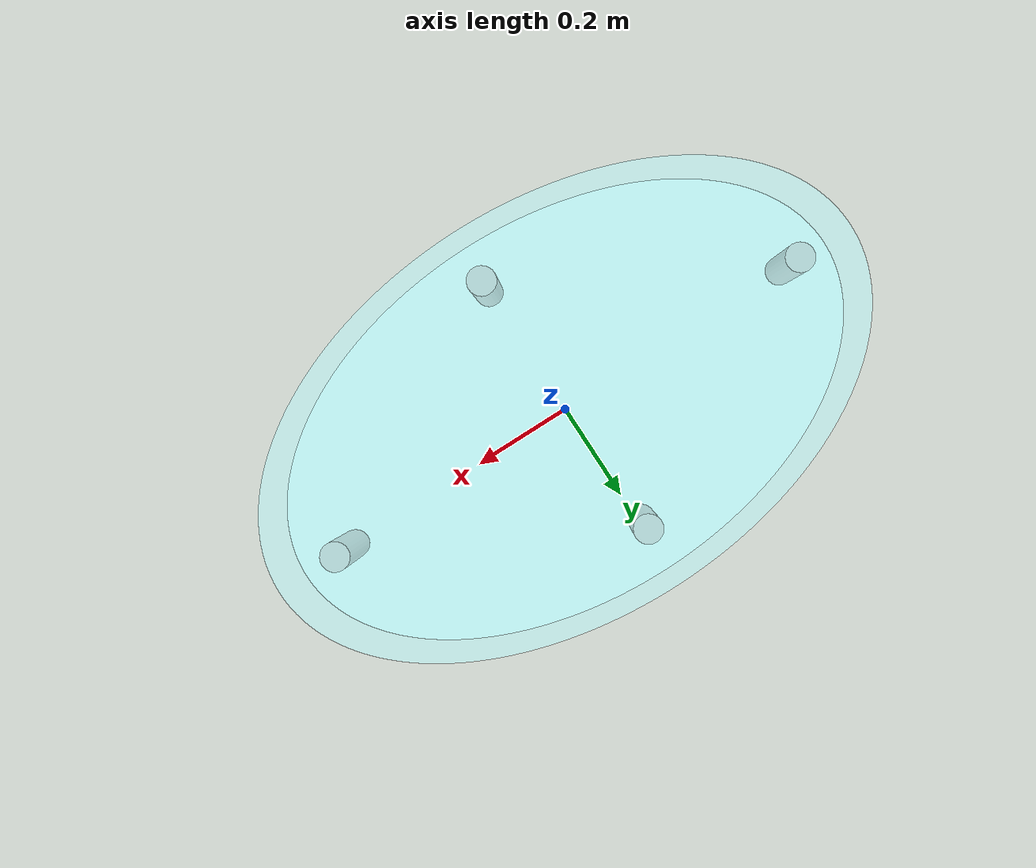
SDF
<?xml version='1.0'?>
<sdf version='1.7'>
  <model name='my_coffee_table'>
    <link name='link_0'>
      <inertial>
        <mass>1</mass>
        <inertia>
          <ixx>0.166667</ixx>
          <ixy>0</ixy>
          <ixz>0</ixz>
          <iyy>0.166667</iyy>
          <iyz>0</iyz>
          <izz>0.166667</izz>
        </inertia>
        <pose>0 0 0 0 -0 0</pose>
      </inertial>
      <pose>0 0 0.015663 0 -0 0</pose>
      <gravity>1</gravity>
      <self_collide>0</self_collide>
      <kinematic>0</kinematic>
      <enable_wind>0</enable_wind>
      <visual name='visual'>
        <pose>0 0 0.35 0 -0 0</pose>
        <geometry>
          <mesh>
            <uri>../../meshes/my_coffee_table.dae</uri>
            <scale>0.6 0.6 0.15</scale>
          </mesh>
        </geometry>
        <material>
          <lighting>1</lighting>
          <script>
            <uri>file://media/materials/scripts/gazebo.material</uri>
            <name>Gazebo/Grey</name>
          </script>
          <shader type='pixel'>
            <normal_map>__default__</normal_map>
          </shader>
          <ambient>0.79 1 1 0.4</ambient>
          <diffuse>0.79 1 1 1</diffuse>
          <specular>0.01 0.01 0.01 1</specular>
          <emissive>0 0 0 1</emissive>
        </material>
        <transparency>0.3</transparency>
        <cast_shadows>1</cast_shadows>
      </visual>
      <collision name='collision'>
        <laser_retro>0</laser_retro>
        <max_contacts>10</max_contacts>
        <pose>0 0 0.35 0 -0 0</pose>
        <geometry>
          <mesh>
            <uri>../../meshes/my_coffee_table.dae</uri>
            <scale>0.6 0.6 0.15</scale>
          </mesh>
        </geometry>
        <surface>
          <friction>
            <ode>
              <mu>1</mu>
              <mu2>1</mu2>
              <fdir1>0 0 0</fdir1>
              <slip1>0</slip1>
              <slip2>0</slip2>
            </ode>
            <torsional>
              <coefficient>1</coefficient>
              <patch_radius>0</patch_radius>
              <surface_radius>0</surface_radius>
              <use_patch_radius>1</use_patch_radius>
              <ode>
                <slip>0</slip>
              </ode>
            </torsional>
          </friction>
          <bounce>
            <restitution_coefficient>0</restitution_coefficient>
            <threshold>1e+06</threshold>
          </bounce>
          <contact>
            <collide_without_contact>0</collide_without_contact>
            <collide_without_contact_bitmask>1</collide_without_contact_bitmask>
            <collide_bitmask>1</collide_bitmask>
            <ode>
              <soft_cfm>0</soft_cfm>
              <soft_erp>0.2</soft_erp>
              <kp>1e+13</kp>
              <kd>1</kd>
              <max_vel>0.01</max_vel>
              <min_depth>0</min_depth>
            </ode>
            <bullet>
              <split_impulse>1</split_impulse>
              <split_impulse_penetration_threshold>-0.01</split_impulse_penetration_threshold>
              <soft_cfm>0</soft_cfm>
              <soft_erp>0.2</soft_erp>
              <kp>1e+13</kp>
              <kd>1</kd>
            </bullet>
          </contact>
        </surface>
      </collision>
    </link>
    <link name='link_0_clone'>
      <inertial>
        <mass>1</mass>
        <inertia>
          <ixx>0.166667</ixx>
          <ixy>0</ixy>
          <ixz>0</ixz>
          <iyy>0.166667</iyy>
          <iyz>0</iyz>
          <izz>0.166667</izz>
        </inertia>
        <pose>0 0 0 0 -0 0</pose>
      </inertial>
      <pose>0 0 -0.15873 0 -0 0</pose>
      <gravity>1</gravity>
      <self_collide>0</self_collide>
      <kinematic>0</kinematic>
      <enable_wind>0</enable_wind>
      <visual name='visual'>
        <pose>0 0 0.35 0 -0 0</pose>
        <geometry>
          <mesh>
            <uri>../../meshes/my_coffee_table.dae</uri>
            <scale>0.6 0.6 0.15</scale>
          </mesh>
        </geometry>
        <material>
          <lighting>1</lighting>
          <script>
            <uri>file://media/materials/scripts/gazebo.material</uri>
            <name>Gazebo/Grey</name>
          </script>
          <shader type='pixel'>
            <normal_map>__default__</normal_map>
          </shader>
          <ambient>0.79 1 1 0.4</ambient>
          <diffuse>0.79 1 1 1</diffuse>
          <specular>0.01 0.01 0.01 1</specular>
          <emissive>0 0 0 1</emissive>
        </material>
        <transparency>0.02</transparency>
        <cast_shadows>1</cast_shadows>
      </visual>
      <collision name='collision'>
        <laser_retro>0</laser_retro>
        <max_contacts>10</max_contacts>
        <pose>0 0 0.35 0 -0 0</pose>
        <geometry>
          <mesh>
            <uri>../../meshes/my_coffee_table.dae</uri>
            <scale>0.6 0.6 0.15</scale>
          </mesh>
        </geometry>
        <surface>
          <friction>
            <ode>
              <mu>1</mu>
              <mu2>1</mu2>
              <fdir1>0 0 0</fdir1>
              <slip1>0</slip1>
              <slip2>0</slip2>
            </ode>
            <torsional>
              <coefficient>1</coefficient>
              <patch_radius>0</patch_radius>
              <surface_radius>0</surface_radius>
              <use_patch_radius>1</use_patch_radius>
              <ode>
                <slip>0</slip>
              </ode>
            </torsional>
          </friction>
          <bounce>
            <restitution_coefficient>0</restitution_coefficient>
            <threshold>1e+06</threshold>
          </bounce>
          <contact>
            <collide_without_contact>0</collide_without_contact>
            <collide_without_contact_bitmask>1</collide_without_contact_bitmask>
            <collide_bitmask>1</collide_bitmask>
            <ode>
              <soft_cfm>0</soft_cfm>
              <soft_erp>0.2</soft_erp>
              <kp>1e+13</kp>
              <kd>1</kd>
              <max_vel>0.01</max_vel>
              <min_depth>0</min_depth>
            </ode>
            <bullet>
              <split_impulse>1</split_impulse>
              <split_impulse_penetration_threshold>-0.01</split_impulse_penetration_threshold>
              <soft_cfm>0</soft_cfm>
              <soft_erp>0.2</soft_erp>
              <kp>1e+13</kp>
              <kd>1</kd>
            </bullet>
          </contact>
        </surface>
      </collision>
    </link>
    <link name='link_1'>
      <inertial>
        <mass>1</mass>
        <inertia>
          <ixx>0.145833</ixx>
          <ixy>0</ixy>
          <ixz>0</ixz>
          <iyy>0.145833</iyy>
          <iyz>0</iyz>
          <izz>0.125</izz>
        </inertia>
        <pose>0 0 0 0 -0 0</pose>
      </inertial>
      <pose>-0.007961 0.235246 0.19 0 -0 0</pose>
      <gravity>1</gravity>
      <self_collide>0</self_collide>
      <kinematic>0</kinematic>
      <enable_wind>0</enable_wind>
      <visual name='visual'>
        <pose>0 0 0 0 -0 0</pose>
        <geometry>
          <cylinder>
            <radius>0.025</radius>
            <length>0.35</length>
          </cylinder>
        </geometry>
        <material>
          <lighting>1</lighting>
          <script>
            <uri>file://media/materials/scripts/gazebo.material</uri>
            <name>Gazebo/Grey</name>
          </script>
          <shader type='pixel'>
            <normal_map>__default__</normal_map>
          </shader>
          <ambient>0.753 0.753 0.753 1</ambient>
          <diffuse>0.753 0.753 0.753 1</diffuse>
          <specular>0.01 0.01 0.01 1</specular>
          <emissive>0 0 0 1</emissive>
        </material>
        <transparency>0</transparency>
        <cast_shadows>1</cast_shadows>
      </visual>
      <collision name='collision'>
        <laser_retro>0</laser_retro>
        <max_contacts>10</max_contacts>
        <pose>0 0 0 0 -0 0</pose>
        <geometry>
          <cylinder>
            <radius>0.025</radius>
            <length>0.35</length>
          </cylinder>
        </geometry>
        <surface>
          <friction>
            <ode>
              <mu>1</mu>
              <mu2>1</mu2>
              <fdir1>0 0 0</fdir1>
              <slip1>0</slip1>
              <slip2>0</slip2>
            </ode>
            <torsional>
              <coefficient>1</coefficient>
              <patch_radius>0</patch_radius>
              <surface_radius>0</surface_radius>
              <use_patch_radius>1</use_patch_radius>
              <ode>
                <slip>0</slip>
              </ode>
            </torsional>
          </friction>
          <bounce>
            <restitution_coefficient>0</restitution_coefficient>
            <threshold>1e+06</threshold>
          </bounce>
          <contact>
            <collide_without_contact>0</collide_without_contact>
            <collide_without_contact_bitmask>1</collide_without_contact_bitmask>
            <collide_bitmask>1</collide_bitmask>
            <ode>
              <soft_cfm>0</soft_cfm>
              <soft_erp>0.2</soft_erp>
              <kp>1e+13</kp>
              <kd>1</kd>
              <max_vel>0.01</max_vel>
              <min_depth>0</min_depth>
            </ode>
            <bullet>
              <split_impulse>1</split_impulse>
              <split_impulse_penetration_threshold>-0.01</split_impulse_penetration_threshold>
              <soft_cfm>0</soft_cfm>
              <soft_erp>0.2</soft_erp>
              <kp>1e+13</kp>
              <kd>1</kd>
            </bullet>
          </contact>
        </surface>
      </collision>
    </link>
    <link name='link_1_clone'>
      <inertial>
        <mass>1</mass>
        <inertia>
          <ixx>0.145833</ixx>
          <ixy>0</ixy>
          <ixz>0</ixz>
          <iyy>0.145833</iyy>
          <iyz>0</iyz>
          <izz>0.125</izz>
        </inertia>
        <pose>0 0 0 0 -0 0</pose>
      </inertial>
      <pose>0.441227 -0.001248 0.19 0 -0 0</pose>
      <gravity>1</gravity>
      <self_collide>0</self_collide>
      <kinematic>0</kinematic>
      <enable_wind>0</enable_wind>
      <visual name='visual'>
        <pose>0 0 0 0 -0 0</pose>
        <geometry>
          <cylinder>
            <radius>0.025</radius>
            <length>0.35</length>
          </cylinder>
        </geometry>
        <material>
          <lighting>1</lighting>
          <script>
            <uri>file://media/materials/scripts/gazebo.material</uri>
            <name>Gazebo/Grey</name>
          </script>
          <shader type='pixel'>
            <normal_map>__default__</normal_map>
          </shader>
          <ambient>0.753 0.753 0.753 1</ambient>
          <diffuse>0.753 0.753 0.753 1</diffuse>
          <specular>0.01 0.01 0.01 1</specular>
          <emissive>0 0 0 1</emissive>
        </material>
        <transparency>0</transparency>
        <cast_shadows>1</cast_shadows>
      </visual>
      <collision name='collision'>
        <laser_retro>0</laser_retro>
        <max_contacts>10</max_contacts>
        <pose>0 0 0 0 -0 0</pose>
        <geometry>
          <cylinder>
            <radius>0.025</radius>
            <length>0.35</length>
          </cylinder>
        </geometry>
        <surface>
          <friction>
            <ode>
              <mu>1</mu>
              <mu2>1</mu2>
              <fdir1>0 0 0</fdir1>
              <slip1>0</slip1>
              <slip2>0</slip2>
            </ode>
            <torsional>
              <coefficient>1</coefficient>
              <patch_radius>0</patch_radius>
              <surface_radius>0</surface_radius>
              <use_patch_radius>1</use_patch_radius>
              <ode>
                <slip>0</slip>
              </ode>
            </torsional>
          </friction>
          <bounce>
            <restitution_coefficient>0</restitution_coefficient>
            <threshold>1e+06</threshold>
          </bounce>
          <contact>
            <collide_without_contact>0</collide_without_contact>
            <collide_without_contact_bitmask>1</collide_without_contact_bitmask>
            <collide_bitmask>1</collide_bitmask>
            <ode>
              <soft_cfm>0</soft_cfm>
              <soft_erp>0.2</soft_erp>
              <kp>1e+13</kp>
              <kd>1</kd>
              <max_vel>0.01</max_vel>
              <min_depth>0</min_depth>
            </ode>
            <bullet>
              <split_impulse>1</split_impulse>
              <split_impulse_penetration_threshold>-0.01</split_impulse_penetration_threshold>
              <soft_cfm>0</soft_cfm>
              <soft_erp>0.2</soft_erp>
              <kp>1e+13</kp>
              <kd>1</kd>
            </bullet>
          </contact>
        </surface>
      </collision>
    </link>
    <link name='link_1_clone_clone'>
      <inertial>
        <mass>1</mass>
        <inertia>
          <ixx>0.145833</ixx>
          <ixy>0</ixy>
          <ixz>0</ixz>
          <iyy>0.145833</iyy>
          <iyz>0</iyz>
          <izz>0.125</izz>
        </inertia>
        <pose>0 0 0 0 -0 0</pose>
      </inertial>
      <pose>0.001265 -0.246836 0.19 0 -0 0</pose>
      <gravity>1</gravity>
      <self_collide>0</self_collide>
      <kinematic>0</kinematic>
      <enable_wind>0</enable_wind>
      <visual name='visual'>
        <pose>0 0 0 0 -0 0</pose>
        <geometry>
          <cylinder>
            <radius>0.025</radius>
            <length>0.35</length>
          </cylinder>
        </geometry>
        <material>
          <lighting>1</lighting>
          <script>
            <uri>file://media/materials/scripts/gazebo.material</uri>
            <name>Gazebo/Grey</name>
          </script>
          <shader type='pixel'>
            <normal_map>__default__</normal_map>
          </shader>
          <ambient>0.753 0.753 0.753 1</ambient>
          <diffuse>0.753 0.753 0.753 1</diffuse>
          <specular>0.01 0.01 0.01 1</specular>
          <emissive>0 0 0 1</emissive>
        </material>
        <transparency>0</transparency>
        <cast_shadows>1</cast_shadows>
      </visual>
      <collision name='collision'>
        <laser_retro>0</laser_retro>
        <max_contacts>10</max_contacts>
        <pose>0 0 0 0 -0 0</pose>
        <geometry>
          <cylinder>
            <radius>0.025</radius>
            <length>0.35</length>
          </cylinder>
        </geometry>
        <surface>
          <friction>
            <ode>
              <mu>1</mu>
              <mu2>1</mu2>
              <fdir1>0 0 0</fdir1>
              <slip1>0</slip1>
              <slip2>0</slip2>
            </ode>
            <torsional>
              <coefficient>1</coefficient>
              <patch_radius>0</patch_radius>
              <surface_radius>0</surface_radius>
              <use_patch_radius>1</use_patch_radius>
              <ode>
                <slip>0</slip>
              </ode>
            </torsional>
          </friction>
          <bounce>
            <restitution_coefficient>0</restitution_coefficient>
            <threshold>1e+06</threshold>
          </bounce>
          <contact>
            <collide_without_contact>0</collide_without_contact>
            <collide_without_contact_bitmask>1</collide_without_contact_bitmask>
            <collide_bitmask>1</collide_bitmask>
            <ode>
              <soft_cfm>0</soft_cfm>
              <soft_erp>0.2</soft_erp>
              <kp>1e+13</kp>
              <kd>1</kd>
              <max_vel>0.01</max_vel>
              <min_depth>0</min_depth>
            </ode>
            <bullet>
              <split_impulse>1</split_impulse>
              <split_impulse_penetration_threshold>-0.01</split_impulse_penetration_threshold>
              <soft_cfm>0</soft_cfm>
              <soft_erp>0.2</soft_erp>
              <kp>1e+13</kp>
              <kd>1</kd>
            </bullet>
          </contact>
        </surface>
      </collision>
    </link>
    <link name='link_1_clone_clone_0'>
      <inertial>
        <mass>1</mass>
        <inertia>
          <ixx>0.145833</ixx>
          <ixy>0</ixy>
          <ixz>0</ixz>
          <iyy>0.145833</iyy>
          <iyz>0</iyz>
          <izz>0.125</izz>
        </inertia>
        <pose>0 0 0 0 -0 0</pose>
      </inertial>
      <pose>-0.451203 0 0.19 0 -0 0</pose>
      <gravity>1</gravity>
      <self_collide>0</self_collide>
      <kinematic>0</kinematic>
      <enable_wind>0</enable_wind>
      <visual name='visual'>
        <pose>0 0 0 0 -0 0</pose>
        <geometry>
          <cylinder>
            <radius>0.025</radius>
            <length>0.35</length>
          </cylinder>
        </geometry>
        <material>
          <lighting>1</lighting>
          <script>
            <uri>file://media/materials/scripts/gazebo.material</uri>
            <name>Gazebo/Grey</name>
          </script>
          <shader type='pixel'>
            <normal_map>__default__</normal_map>
          </shader>
          <ambient>0.753 0.753 0.753 1</ambient>
          <diffuse>0.753 0.753 0.753 1</diffuse>
          <specular>0.01 0.01 0.01 1</specular>
          <emissive>0 0 0 1</emissive>
        </material>
        <transparency>0</transparency>
        <cast_shadows>1</cast_shadows>
      </visual>
      <collision name='collision'>
        <laser_retro>0</laser_retro>
        <max_contacts>10</max_contacts>
        <pose>0 0 0 0 -0 0</pose>
        <geometry>
          <cylinder>
            <radius>0.025</radius>
            <length>0.35</length>
          </cylinder>
        </geometry>
        <surface>
          <friction>
            <ode>
              <mu>1</mu>
              <mu2>1</mu2>
              <fdir1>0 0 0</fdir1>
              <slip1>0</slip1>
              <slip2>0</slip2>
            </ode>
            <torsional>
              <coefficient>1</coefficient>
              <patch_radius>0</patch_radius>
              <surface_radius>0</surface_radius>
              <use_patch_radius>1</use_patch_radius>
              <ode>
                <slip>0</slip>
              </ode>
            </torsional>
          </friction>
          <bounce>
            <restitution_coefficient>0</restitution_coefficient>
            <threshold>1e+06</threshold>
          </bounce>
          <contact>
            <collide_without_contact>0</collide_without_contact>
            <collide_without_contact_bitmask>1</collide_without_contact_bitmask>
            <collide_bitmask>1</collide_bitmask>
            <ode>
              <soft_cfm>0</soft_cfm>
              <soft_erp>0.2</soft_erp>
              <kp>1e+13</kp>
              <kd>1</kd>
              <max_vel>0.01</max_vel>
              <min_depth>0</min_depth>
            </ode>
            <bullet>
              <split_impulse>1</split_impulse>
              <split_impulse_penetration_threshold>-0.01</split_impulse_penetration_threshold>
              <soft_cfm>0</soft_cfm>
              <soft_erp>0.2</soft_erp>
              <kp>1e+13</kp>
              <kd>1</kd>
            </bullet>
          </contact>
        </surface>
      </collision>
    </link>
    <link name='link_1_clone_clone_clone'>
      <inertial>
        <mass>1</mass>
        <inertia>
          <ixx>0.145833</ixx>
          <ixy>0</ixy>
          <ixz>0</ixz>
          <iyy>0.145833</iyy>
          <iyz>0</iyz>
          <izz>0.125</izz>
        </inertia>
        <pose>0 0 0 0 -0 0</pose>
      </inertial>
      <pose>-0.451679 -0.00025 0.0175 0 -0 0</pose>
      <gravity>1</gravity>
      <self_collide>0</self_collide>
      <kinematic>0</kinematic>
      <enable_wind>0</enable_wind>
      <visual name='visual'>
        <pose>0 0 0 0 -0 0</pose>
        <geometry>
          <cylinder>
            <radius>0.033</radius>
            <length>0.005</length>
          </cylinder>
        </geometry>
        <material>
          <lighting>1</lighting>
          <script>
            <uri>file://media/materials/scripts/gazebo.material</uri>
            <name>Gazebo/Grey</name>
          </script>
          <shader type='pixel'>
            <normal_map>__default__</normal_map>
          </shader>
          <ambient>0.753 0.753 0.753 1</ambient>
          <diffuse>0.753 0.753 0.753 1</diffuse>
          <specular>0.01 0.01 0.01 1</specular>
          <emissive>0 0 0 1</emissive>
        </material>
        <transparency>0</transparency>
        <cast_shadows>1</cast_shadows>
      </visual>
      <collision name='collision'>
        <laser_retro>0</laser_retro>
        <max_contacts>10</max_contacts>
        <pose>0 0 0 0 -0 0</pose>
        <geometry>
          <cylinder>
            <radius>0.033</radius>
            <length>0.005</length>
          </cylinder>
        </geometry>
        <surface>
          <friction>
            <ode>
              <mu>1</mu>
              <mu2>1</mu2>
              <fdir1>0 0 0</fdir1>
              <slip1>0</slip1>
              <slip2>0</slip2>
            </ode>
            <torsional>
              <coefficient>1</coefficient>
              <patch_radius>0</patch_radius>
              <surface_radius>0</surface_radius>
              <use_patch_radius>1</use_patch_radius>
              <ode>
                <slip>0</slip>
              </ode>
            </torsional>
          </friction>
          <bounce>
            <restitution_coefficient>0</restitution_coefficient>
            <threshold>1e+06</threshold>
          </bounce>
          <contact>
            <collide_without_contact>0</collide_without_contact>
            <collide_without_contact_bitmask>1</collide_without_contact_bitmask>
            <collide_bitmask>1</collide_bitmask>
            <ode>
              <soft_cfm>0</soft_cfm>
              <soft_erp>0.2</soft_erp>
              <kp>1e+13</kp>
              <kd>1</kd>
              <max_vel>0.01</max_vel>
              <min_depth>0</min_depth>
            </ode>
            <bullet>
              <split_impulse>1</split_impulse>
              <split_impulse_penetration_threshold>-0.01</split_impulse_penetration_threshold>
              <soft_cfm>0</soft_cfm>
              <soft_erp>0.2</soft_erp>
              <kp>1e+13</kp>
              <kd>1</kd>
            </bullet>
          </contact>
        </surface>
      </collision>
    </link>
    <link name='link_1_clone_clone_clone_clone'>
      <inertial>
        <mass>1</mass>
        <inertia>
          <ixx>0.145833</ixx>
          <ixy>0</ixy>
          <ixz>0</ixz>
          <iyy>0.145833</iyy>
          <iyz>0</iyz>
          <izz>0.125</izz>
        </inertia>
        <pose>0 0 0 0 -0 0</pose>
      </inertial>
      <pose>0.000264 -0.246964 0.0175 0 -0 0</pose>
      <gravity>1</gravity>
      <self_collide>0</self_collide>
      <kinematic>0</kinematic>
      <enable_wind>0</enable_wind>
      <visual name='visual'>
        <pose>0 0 0 0 -0 0</pose>
        <geometry>
          <cylinder>
            <radius>0.033</radius>
            <length>0.005</length>
          </cylinder>
        </geometry>
        <material>
          <lighting>1</lighting>
          <script>
            <uri>file://media/materials/scripts/gazebo.material</uri>
            <name>Gazebo/Grey</name>
          </script>
          <shader type='pixel'>
            <normal_map>__default__</normal_map>
          </shader>
          <ambient>0.753 0.753 0.753 1</ambient>
          <diffuse>0.753 0.753 0.753 1</diffuse>
          <specular>0.01 0.01 0.01 1</specular>
          <emissive>0 0 0 1</emissive>
        </material>
        <transparency>0</transparency>
        <cast_shadows>1</cast_shadows>
      </visual>
      <collision name='collision'>
        <laser_retro>0</laser_retro>
        <max_contacts>10</max_contacts>
        <pose>0 0 0 0 -0 0</pose>
        <geometry>
          <cylinder>
            <radius>0.033</radius>
            <length>0.005</length>
          </cylinder>
        </geometry>
        <surface>
          <friction>
            <ode>
              <mu>1</mu>
              <mu2>1</mu2>
              <fdir1>0 0 0</fdir1>
              <slip1>0</slip1>
              <slip2>0</slip2>
            </ode>
            <torsional>
              <coefficient>1</coefficient>
              <patch_radius>0</patch_radius>
              <surface_radius>0</surface_radius>
              <use_patch_radius>1</use_patch_radius>
              <ode>
                <slip>0</slip>
              </ode>
            </torsional>
          </friction>
          <bounce>
            <restitution_coefficient>0</restitution_coefficient>
            <threshold>1e+06</threshold>
          </bounce>
          <contact>
            <collide_without_contact>0</collide_without_contact>
            <collide_without_contact_bitmask>1</collide_without_contact_bitmask>
            <collide_bitmask>1</collide_bitmask>
            <ode>
              <soft_cfm>0</soft_cfm>
              <soft_erp>0.2</soft_erp>
              <kp>1e+13</kp>
              <kd>1</kd>
              <max_vel>0.01</max_vel>
              <min_depth>0</min_depth>
            </ode>
            <bullet>
              <split_impulse>1</split_impulse>
              <split_impulse_penetration_threshold>-0.01</split_impulse_penetration_threshold>
              <soft_cfm>0</soft_cfm>
              <soft_erp>0.2</soft_erp>
              <kp>1e+13</kp>
              <kd>1</kd>
            </bullet>
          </contact>
        </surface>
      </collision>
    </link>
    <link name='link_1_clone_clone_clone_clone_0'>
      <inertial>
        <mass>1</mass>
        <inertia>
          <ixx>0.145833</ixx>
          <ixy>0</ixy>
          <ixz>0</ixz>
          <iyy>0.145833</iyy>
          <iyz>0</iyz>
          <izz>0.125</izz>
        </inertia>
        <pose>0 0 0 0 -0 0</pose>
      </inertial>
      <pose>-0.008253 0.235671 0.0175 0 -0 0</pose>
      <gravity>1</gravity>
      <self_collide>0</self_collide>
      <kinematic>0</kinematic>
      <enable_wind>0</enable_wind>
      <visual name='visual'>
        <pose>0 0 0 0 -0 0</pose>
        <geometry>
          <cylinder>
            <radius>0.033</radius>
            <length>0.005</length>
          </cylinder>
        </geometry>
        <material>
          <lighting>1</lighting>
          <script>
            <uri>file://media/materials/scripts/gazebo.material</uri>
            <name>Gazebo/Grey</name>
          </script>
          <shader type='pixel'>
            <normal_map>__default__</normal_map>
          </shader>
          <ambient>0.753 0.753 0.753 1</ambient>
          <diffuse>0.753 0.753 0.753 1</diffuse>
          <specular>0.01 0.01 0.01 1</specular>
          <emissive>0 0 0 1</emissive>
        </material>
        <transparency>0</transparency>
        <cast_shadows>1</cast_shadows>
      </visual>
      <collision name='collision'>
        <laser_retro>0</laser_retro>
        <max_contacts>10</max_contacts>
        <pose>0 0 0 0 -0 0</pose>
        <geometry>
          <cylinder>
            <radius>0.033</radius>
            <length>0.005</length>
          </cylinder>
        </geometry>
        <surface>
          <friction>
            <ode>
              <mu>1</mu>
              <mu2>1</mu2>
              <fdir1>0 0 0</fdir1>
              <slip1>0</slip1>
              <slip2>0</slip2>
            </ode>
            <torsional>
              <coefficient>1</coefficient>
              <patch_radius>0</patch_radius>
              <surface_radius>0</surface_radius>
              <use_patch_radius>1</use_patch_radius>
              <ode>
                <slip>0</slip>
              </ode>
            </torsional>
          </friction>
          <bounce>
            <restitution_coefficient>0</restitution_coefficient>
            <threshold>1e+06</threshold>
          </bounce>
          <contact>
            <collide_without_contact>0</collide_without_contact>
            <collide_without_contact_bitmask>1</collide_without_contact_bitmask>
            <collide_bitmask>1</collide_bitmask>
            <ode>
              <soft_cfm>0</soft_cfm>
              <soft_erp>0.2</soft_erp>
              <kp>1e+13</kp>
              <kd>1</kd>
              <max_vel>0.01</max_vel>
              <min_depth>0</min_depth>
            </ode>
            <bullet>
              <split_impulse>1</split_impulse>
              <split_impulse_penetration_threshold>-0.01</split_impulse_penetration_threshold>
              <soft_cfm>0</soft_cfm>
              <soft_erp>0.2</soft_erp>
              <kp>1e+13</kp>
              <kd>1</kd>
            </bullet>
          </contact>
        </surface>
      </collision>
    </link>
    <link name='link_1_clone_clone_clone_clone_1'>
      <inertial>
        <mass>1</mass>
        <inertia>
          <ixx>0.145833</ixx>
          <ixy>0</ixy>
          <ixz>0</ixz>
          <iyy>0.145833</iyy>
          <iyz>0</iyz>
          <izz>0.125</izz>
        </inertia>
        <pose>0 0 0 0 -0 0</pose>
      </inertial>
      <pose>0.441049 -0.001441 0.0175 0 -0 0</pose>
      <gravity>1</gravity>
      <self_collide>0</self_collide>
      <kinematic>0</kinematic>
      <enable_wind>0</enable_wind>
      <visual name='visual'>
        <pose>0 0 0 0 -0 0</pose>
        <geometry>
          <cylinder>
            <radius>0.033</radius>
            <length>0.005</length>
          </cylinder>
        </geometry>
        <material>
          <lighting>1</lighting>
          <script>
            <uri>file://media/materials/scripts/gazebo.material</uri>
            <name>Gazebo/Grey</name>
          </script>
          <shader type='pixel'>
            <normal_map>__default__</normal_map>
          </shader>
          <ambient>0.753 0.753 0.753 1</ambient>
          <diffuse>0.753 0.753 0.753 1</diffuse>
          <specular>0.01 0.01 0.01 1</specular>
          <emissive>0 0 0 1</emissive>
        </material>
        <transparency>0</transparency>
        <cast_shadows>1</cast_shadows>
      </visual>
      <collision name='collision'>
        <laser_retro>0</laser_retro>
        <max_contacts>10</max_contacts>
        <pose>0 0 0 0 -0 0</pose>
        <geometry>
          <cylinder>
            <radius>0.033</radius>
            <length>0.005</length>
          </cylinder>
        </geometry>
        <surface>
          <friction>
            <ode>
              <mu>1</mu>
              <mu2>1</mu2>
              <fdir1>0 0 0</fdir1>
              <slip1>0</slip1>
              <slip2>0</slip2>
            </ode>
            <torsional>
              <coefficient>1</coefficient>
              <patch_radius>0</patch_radius>
              <surface_radius>0</surface_radius>
              <use_patch_radius>1</use_patch_radius>
              <ode>
                <slip>0</slip>
              </ode>
            </torsional>
          </friction>
          <bounce>
            <restitution_coefficient>0</restitution_coefficient>
            <threshold>1e+06</threshold>
          </bounce>
          <contact>
            <collide_without_contact>0</collide_without_contact>
            <collide_without_contact_bitmask>1</collide_without_contact_bitmask>
            <collide_bitmask>1</collide_bitmask>
            <ode>
              <soft_cfm>0</soft_cfm>
              <soft_erp>0.2</soft_erp>
              <kp>1e+13</kp>
              <kd>1</kd>
              <max_vel>0.01</max_vel>
              <min_depth>0</min_depth>
            </ode>
            <bullet>
              <split_impulse>1</split_impulse>
              <split_impulse_penetration_threshold>-0.01</split_impulse_penetration_threshold>
              <soft_cfm>0</soft_cfm>
              <soft_erp>0.2</soft_erp>
              <kp>1e+13</kp>
              <kd>1</kd>
            </bullet>
          </contact>
        </surface>
      </collision>
    </link>
    <joint name='link_0_JOINT_0' type='fixed'>
      <parent>link_0</parent>
      <child>link_1</child>
      <pose>0 0 0 0 -0 0</pose>
      <physics>
        <ode>
          <limit>
            <cfm>0</cfm>
            <erp>0.2</erp>
          </limit>
          <suspension>
            <cfm>0</cfm>
            <erp>0.2</erp>
          </suspension>
        </ode>
      </physics>
    </joint>
    <joint name='link_0_JOINT_1' type='fixed'>
      <parent>link_0</parent>
      <child>link_1_clone</child>
      <pose>0 0 0 0 -0 0</pose>
      <physics>
        <ode>
          <limit>
            <cfm>0</cfm>
            <erp>0.2</erp>
          </limit>
          <suspension>
            <cfm>0</cfm>
            <erp>0.2</erp>
          </suspension>
        </ode>
      </physics>
    </joint>
    <joint name='link_0_JOINT_2' type='fixed'>
      <parent>link_0</parent>
      <child>link_1_clone_clone</child>
      <pose>0 0 0 0 -0 0</pose>
      <physics>
        <ode>
          <limit>
            <cfm>0</cfm>
            <erp>0.2</erp>
          </limit>
          <suspension>
            <cfm>0</cfm>
            <erp>0.2</erp>
          </suspension>
        </ode>
      </physics>
    </joint>
    <joint name='link_0_JOINT_3' type='fixed'>
      <parent>link_0</parent>
      <child>link_1_clone_clone_0</child>
      <pose>0 0 0 0 -0 0</pose>
      <physics>
        <ode>
          <limit>
            <cfm>0</cfm>
            <erp>0.2</erp>
          </limit>
          <suspension>
            <cfm>0</cfm>
            <erp>0.2</erp>
          </suspension>
        </ode>
      </physics>
    </joint>
    <joint name='link_0_clone_JOINT_9' type='fixed'>
      <parent>link_0_clone</parent>
      <child>link_0</child>
      <pose>0 0 0 0 -0 0</pose>
      <physics>
        <ode>
          <limit>
            <cfm>0</cfm>
            <erp>0.2</erp>
          </limit>
          <suspension>
            <cfm>0</cfm>
            <erp>0.2</erp>
          </suspension>
        </ode>
      </physics>
    </joint>
    <static>1</static>
    <allow_auto_disable>1</allow_auto_disable>
  </model>
</sdf>
